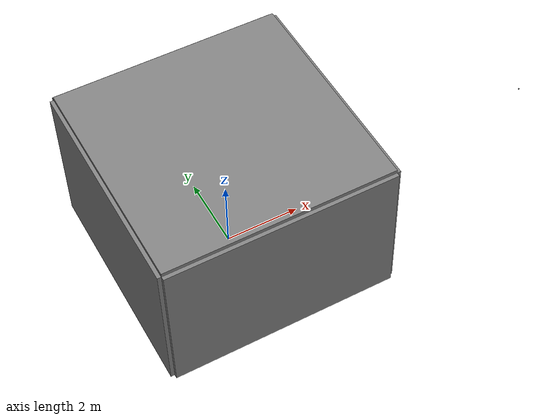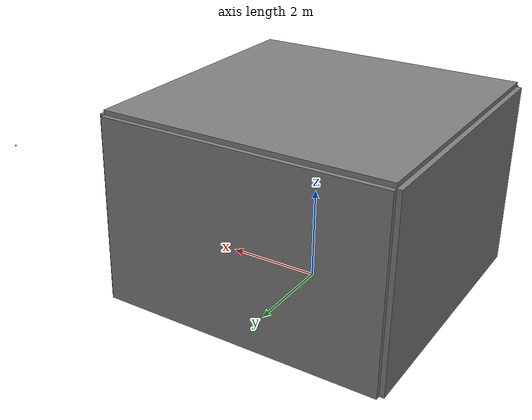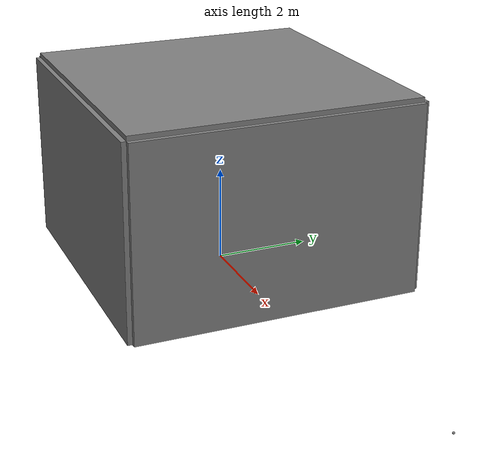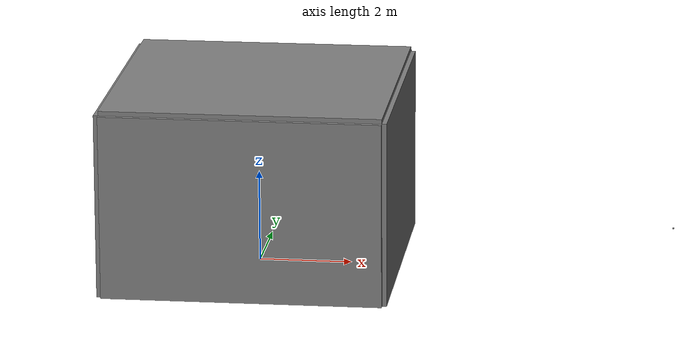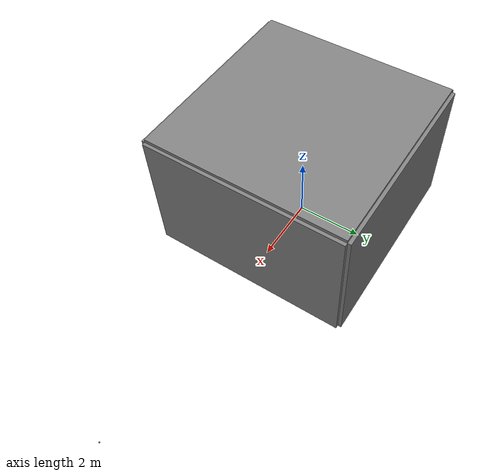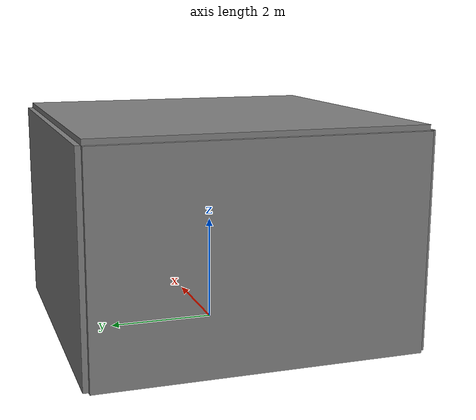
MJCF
<mujoco model="cameras">
  <visual>
    <global offwidth="320" offheight="240" fovy="40"/>
    <map znear="0.02" zfar="40" force="0.2"/>
  </visual>

  <default>
    <camera fovy="50"/>
    <site size="0.02"/>
    <default class="wide">
      <camera fovy="90" resolution="64 48"/>
    </default>
  </default>

  <worldbody>
    <geom name="floor" type="plane" size="3 3 0.1"/>
    <geom name="wall_xp" type="box" pos="3.05 0 2" size="0.05 3 2"/>
    <geom name="wall_xn" type="box" pos="-3.05 0 2" size="0.05 3 2"/>
    <geom name="wall_yp" type="box" pos="0 3.05 2" size="3 0.05 2"/>
    <geom name="wall_yn" type="box" pos="0 -3.05 2" size="3 0.05 2"/>
    <geom name="ceiling" type="box" pos="0 0 4.05" size="3 3 0.05"/>
    <site name="outside" pos="9 0 1"/>
    <camera name="overview" pos="0 -2.5 2" xyaxes="1 0 0 0 0.6 0.8"/>
    <camera name="wide_world" class="wide" pos="2.5 2.5 1.5" euler="60 0 135"/>
    <camera name="ortho" projection="orthographic" fovy="3" pos="0 0 3.5"/>
    <body name="base" pos="0.3 -0.2 0.6" quat="0.9 0 0 0.3">
      <freejoint/>
      <geom type="box" size="0.2 0.15 0.1"/>
      <site name="strut" type="capsule" fromto="0 0 0.1 0.3 0.1 0.4" size="0.01"/>
      <camera name="base_cam" pos="-0.25 0 0.15" zaxis="1 0.2 0.3" fovy="70" resolution="160 120"/>
      <body name="arm" pos="0.2 0 0.1" euler="0 -30 0">
        <joint name="shoulder" type="hinge" pos="0 0 0.05" axis="0 1 0"/>
        <geom type="capsule" fromto="0 0 0 0.4 0 0" size="0.04"/>
        <site name="tip" pos="0.45 0 0"/>
        <camera name="sensor_mm" pos="0.4 0 0.06" xyaxes="0 -1 0 0.3 0 1"
                sensorsize="0.0064 0.0048" focal="0.004 0.0045" principal="0.0002 -0.0001"
                resolution="128 96"/>
        <body name="wrist" pos="0.4 0 0">
          <joint name="wrist" type="ball" pos="0.02 0 0"/>
          <geom type="ellipsoid" size="0.05 0.03 0.02" pos="0.05 0 0"/>
          <camera name="sensor_px" pos="0.05 0 0.03" axisangle="1 1 0 120"
                  sensorsize="0.006 0.004" focalpixel="120 110" principalpixel="3 -2"
                  resolution="100 80"/>
          <body name="slider" pos="0.1 0 0">
            <joint name="slide" type="slide" axis="1 0 0"/>
            <geom type="cylinder" size="0.02 0.05"/>
            <camera name="follow" mode="trackcom" pos="0 -1 0.5"/>
            <camera name="hand" pos="0.06 0 0" quat="0.7071068 0 -0.7071068 0"/>
          </body>
        </body>
      </body>
    </body>
  </worldbody>
</mujoco>
